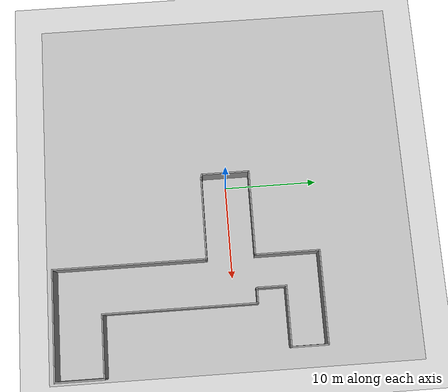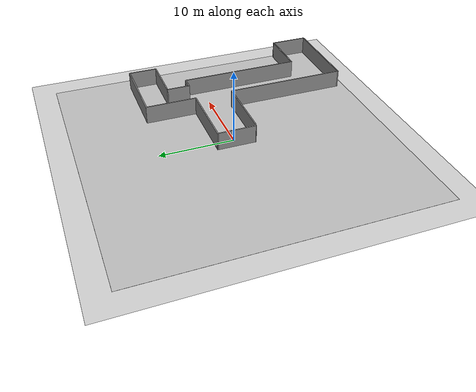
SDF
<sdf version="1.7">
 <world name="lab_world">
  <gravity>0 0 -9.8</gravity>
  <model name="ground_plane">
   <static>1</static>
   <link name="link">
    <collision name="collision">
     <geometry><plane><normal>0 0 1</normal><size>100 100</size></plane></geometry>
     <surface><friction><ode><mu>100</mu><mu2>50</mu2></ode></friction></surface>
    </collision>
    <visual name="visual">
     <cast_shadows>0</cast_shadows>
     <geometry><plane><normal>0 0 1</normal><size>100 100</size></plane></geometry>
     <material>
      <script><uri>file://media/materials/scripts/gazebo.material</uri><name>Gazebo/Grey</name></script>
     </material>
    </visual>
   </link>
  </model>
  <light name="sun" type="directional">
   <pose>0 0 10 0 -0 0</pose>
   <diffuse>0.8 0.8 0.8 1</diffuse>
   <specular>0.2 0.2 0.2 1</specular>
   <attenuation>
    <range>1000</range>
    <constant>0.9</constant>
    <linear>0.01</linear>
    <quadratic>0.001</quadratic>
   </attenuation>
   <direction>-0.5 0.1 -0.9</direction>
   <spot><inner_angle>0</inner_angle><outer_angle>0</outer_angle><falloff>0</falloff></spot>
  </light>
  <magnetic_field>6e-06 2.3e-05 -4.2e-05</magnetic_field>
  <atmosphere type="adiabatic"/>
  <physics type="ode">
   <max_step_size>0.001</max_step_size>
   <real_time_factor>1</real_time_factor>
   <real_time_update_rate>1000</real_time_update_rate>
  </physics>
  <scene><ambient>0.4 0.4 0.4 1</ambient><background>0.7 0.7 0.7 1</background><shadows>1</shadows></scene>
  <spherical_coordinates>
   <surface_model>EARTH_WGS84</surface_model>
   <latitude_deg>0</latitude_deg>
   <longitude_deg>0</longitude_deg>
   <elevation>0</elevation>
   <heading_deg>0</heading_deg>
  </spherical_coordinates>
  <model name="topo_try">
   <pose>9.16441 -4.76 0 0 -0 0</pose>
   <link name="Wall_10">
    <collision name="Wall_10_Collision">
     <geometry><box><size>3.25 0.15 2.5</size></box></geometry>
     <pose>0 0 1.25 0 -0 0</pose>
    </collision>
    <visual name="Wall_10_Visual">
     <pose>0 0 1.25 0 -0 0</pose>
     <geometry><box><size>3.25 0.15 2.5</size></box></geometry>
     <material>
      <script><uri>file://media/materials/scripts/gazebo.material</uri><name>Gazebo/Grey</name></script>
      <ambient>1 1 1 1</ambient>
     </material>
     <meta><layer>0</layer></meta>
    </visual>
    <pose>2.20886 8.8 0 0 -0 -1.5708</pose>
   </link>
   <link name="Wall_11">
    <collision name="Wall_11_Collision">
     <geometry><box><size>1.75 0.15 2.5</size></box></geometry>
     <pose>0 0 1.25 0 -0 0</pose>
    </collision>
    <visual name="Wall_11_Visual">
     <pose>0 0 1.25 0 -0 0</pose>
     <geometry><box><size>1.75 0.15 2.5</size></box></geometry>
     <material>
      <script><uri>file://media/materials/scripts/gazebo.material</uri><name>Gazebo/Grey</name></script>
      <ambient>1 1 1 1</ambient>
     </material>
     <meta><layer>0</layer></meta>
    </visual>
    <pose>3.00886 7.25 0 0 -0 0</pose>
   </link>
   <link name="Wall_12">
    <collision name="Wall_12_Collision">
     <geometry><box><size>16.5 0.15 2.5</size></box></geometry>
     <pose>0 0 1.25 0 -0 0</pose>
    </collision>
    <visual name="Wall_12_Visual">
     <pose>0 0 1.25 0 -0 0</pose>
     <geometry><box><size>16.5 0.15 2.5</size></box></geometry>
     <material>
      <script><uri>file://media/materials/scripts/gazebo.material</uri><name>Gazebo/Grey</name></script>
      <ambient>1 1 1 1</ambient>
     </material>
     <meta><layer>0</layer></meta>
    </visual>
    <pose>3.80886 -0.925 0 0 -0 -1.5708</pose>
   </link>
   <link name="Wall_13">
    <collision name="Wall_13_Collision">
     <geometry><box><size>6.75 0.15 2.5</size></box></geometry>
     <pose>0 0 1.25 0 -0 0</pose>
    </collision>
    <visual name="Wall_13_Visual">
     <pose>0 0 1.25 0 -0 0</pose>
     <geometry><box><size>6.75 0.15 2.5</size></box></geometry>
     <material>
      <script><uri>file://media/materials/scripts/gazebo.material</uri><name>Gazebo/Grey</name></script>
      <ambient>1 1 1 1</ambient>
     </material>
     <meta><layer>0</layer></meta>
    </visual>
    <pose>7.10886 -9.1 0 0 -0 0</pose>
   </link>
   <link name="Wall_14">
    <collision name="Wall_14_Collision">
     <geometry><box><size>5.25 0.15 2.5</size></box></geometry>
     <pose>0 0 1.25 0 -0 0</pose>
    </collision>
    <visual name="Wall_14_Visual">
     <pose>0 0 1.25 0 -0 0</pose>
     <geometry><box><size>5.25 0.15 2.5</size></box></geometry>
     <material>
      <script><uri>file://media/materials/scripts/gazebo.material</uri><name>Gazebo/Grey</name></script>
      <ambient>1 1 1 1</ambient>
     </material>
     <meta><layer>0</layer></meta>
    </visual>
    <pose>10.4089 -11.65 0 0 -0 -1.5708</pose>
   </link>
   <link name="Wall_15">
    <collision name="Wall_15_Collision">
     <geometry><box><size>11.75 0.15 2.5</size></box></geometry>
     <pose>0 0 1.25 0 -0 0</pose>
    </collision>
    <visual name="Wall_15_Visual">
     <pose>0 0 1.25 0 -0 0</pose>
     <geometry><box><size>11.75 0.15 2.5</size></box></geometry>
     <material>
      <script><uri>file://media/materials/scripts/gazebo.material</uri><name>Gazebo/Grey</name></script>
      <ambient>1 1 1 1</ambient>
     </material>
     <meta><layer>0</layer></meta>
    </visual>
    <pose>4.60886 -14.2 0 0 -0 3.14159</pose>
   </link>
   <link name="Wall_16">
    <collision name="Wall_16_Collision">
     <geometry><box><size>16.5 0.15 2.5</size></box></geometry>
     <pose>0 0 1.25 0 -0 0</pose>
    </collision>
    <visual name="Wall_16_Visual">
     <pose>0 0 1.25 0 -0 0</pose>
     <geometry><box><size>16.5 0.15 2.5</size></box></geometry>
     <material>
      <script><uri>file://media/materials/scripts/gazebo.material</uri><name>Gazebo/Grey</name></script>
      <ambient>1 1 1 1</ambient>
     </material>
     <meta><layer>0</layer></meta>
    </visual>
    <pose>-1.19114 -6.025 0 0 -0 1.5708</pose>
   </link>
   <link name="Wall_17">
    <collision name="Wall_17_Collision">
     <geometry><box><size>9 0.15 2.5</size></box></geometry>
     <pose>0 0 1.25 0 -0 0</pose>
    </collision>
    <visual name="Wall_17_Visual">
     <pose>0 0 1.25 0 -0 0</pose>
     <geometry><box><size>9 0.15 2.5</size></box></geometry>
     <material>
      <script><uri>file://media/materials/scripts/gazebo.material</uri><name>Gazebo/Grey</name></script>
      <ambient>1 1 1 1</ambient>
     </material>
     <meta><layer>0</layer></meta>
    </visual>
    <pose>-5.61614 2.15 0 0 -0 3.14159</pose>
   </link>
   <link name="Wall_19">
    <collision name="Wall_19_Collision">
     <geometry><box><size>0.514005 0.15 2.5</size></box></geometry>
     <pose>0 0 1.25 0 -0 0</pose>
    </collision>
    <visual name="Wall_19_Visual">
     <pose>0 0 1.25 0 -0 0</pose>
     <geometry><box><size>0.514005 0.15 2.5</size></box></geometry>
     <material>
      <script><uri>file://media/materials/scripts/gazebo.material</uri><name>Gazebo/Grey</name></script>
      <ambient>1 1 1 1</ambient>
     </material>
     <meta><layer>0</layer></meta>
    </visual>
    <pose>-10.2161 2.2 0 0 -0 2.86329</pose>
   </link>
   <link name="Wall_3">
    <collision name="Wall_3_Collision">
     <geometry><box><size>5.25 0.15 2.5</size></box></geometry>
     <pose>0 0 1.25 0 -0 0</pose>
    </collision>
    <visual name="Wall_3_Visual">
     <pose>0 0 1.25 0 -0 0</pose>
     <geometry><box><size>5.25 0.15 2.5</size></box></geometry>
     <material>
      <script><uri>file://media/materials/scripts/gazebo.material</uri><name>Gazebo/Grey</name></script>
      <ambient>1 1 1 1</ambient>
     </material>
     <meta><layer>0</layer></meta>
    </visual>
    <pose>-10.3911 4.8 0 0 -0 1.5708</pose>
   </link>
   <link name="Wall_4">
    <collision name="Wall_4_Collision">
     <geometry><box><size>9.25 0.15 2.5</size></box></geometry>
     <pose>0 0 1.25 0 -0 0</pose>
    </collision>
    <visual name="Wall_4_Visual">
     <pose>0 0 1.25 0 -0 0</pose>
     <geometry><box><size>9.25 0.15 2.5</size></box></geometry>
     <material>
      <script><uri>file://media/materials/scripts/gazebo.material</uri><name>Gazebo/Grey</name></script>
      <ambient>1 1 1 1</ambient>
     </material>
     <meta><layer>0</layer></meta>
    </visual>
    <pose>-5.84114 7.35 0 0 -0 0</pose>
   </link>
   <link name="Wall_5">
    <collision name="Wall_5_Collision">
     <geometry><box><size>7 0.15 2.5</size></box></geometry>
     <pose>0 0 1.25 0 -0 0</pose>
    </collision>
    <visual name="Wall_5_Visual">
     <pose>0 0 1.25 0 -0 0</pose>
     <geometry><box><size>7 0.15 2.5</size></box></geometry>
     <material>
      <script><uri>file://media/materials/scripts/gazebo.material</uri><name>Gazebo/Grey</name></script>
      <ambient>1 1 1 1</ambient>
     </material>
     <meta><layer>0</layer></meta>
    </visual>
    <pose>-1.29114 10.775 0 0 -0 1.5708</pose>
   </link>
   <link name="Wall_6">
    <collision name="Wall_6_Collision">
     <geometry><box><size>10 0.15 2.5</size></box></geometry>
     <pose>0 0 1.25 0 -0 0</pose>
    </collision>
    <visual name="Wall_6_Visual">
     <pose>0 0 1.25 0 -0 0</pose>
     <geometry><box><size>10 0.15 2.5</size></box></geometry>
     <material>
      <script><uri>file://media/materials/scripts/gazebo.material</uri><name>Gazebo/Grey</name></script>
      <ambient>1 1 1 1</ambient>
     </material>
     <meta><layer>0</layer></meta>
    </visual>
    <pose>3.63386 14.2 0 0 -0 0</pose>
   </link>
   <link name="Wall_8">
    <collision name="Wall_8_Collision">
     <geometry><box><size>4 0.15 2.5</size></box></geometry>
     <pose>0 0 1.25 0 -0 0</pose>
    </collision>
    <visual name="Wall_8_Visual">
     <pose>0 0 1.25 0 -0 0</pose>
     <geometry><box><size>4 0.15 2.5</size></box></geometry>
     <material>
      <script><uri>file://media/materials/scripts/gazebo.material</uri><name>Gazebo/Grey</name></script>
      <ambient>1 1 1 1</ambient>
     </material>
     <meta><layer>0</layer></meta>
    </visual>
    <pose>8.55886 12.275 0 0 -0 -1.5708</pose>
   </link>
   <link name="Wall_9">
    <collision name="Wall_9_Collision">
     <geometry><box><size>6.5 0.15 2.5</size></box></geometry>
     <pose>0 0 1.25 0 -0 0</pose>
    </collision>
    <visual name="Wall_9_Visual">
     <pose>0 0 1.25 0 -0 0</pose>
     <geometry><box><size>6.5 0.15 2.5</size></box></geometry>
     <material>
      <script><uri>file://media/materials/scripts/gazebo.material</uri><name>Gazebo/Grey</name></script>
      <ambient>1 1 1 1</ambient>
     </material>
     <meta><layer>0</layer></meta>
    </visual>
    <pose>5.38386 10.35 0 0 -0 3.14159</pose>
   </link>
   <static>1</static>
  </model>
  <model name="Floor">
   <link name="main">
    <pose>0 0 0.01 0 -0 0</pose>
    <collision name="main_Collision"><geometry><box><size>40 40 0.01</size></box></geometry></collision>
    <visual name="main_Visual">
     <geometry><box><size>40 40 0.01</size></box></geometry>
     <material>
      <script>
       <uri>model://Floor/materials/scripts</uri>
       <uri>model://Floor/materials/textures</uri>
       <name>floor</name>
      </script>
     </material>
    </visual>
   </link>
   <static>1</static>
   <pose>0.004166 -0.068217 0 0 -0 0</pose>
  </model>
 </world>
</sdf>
